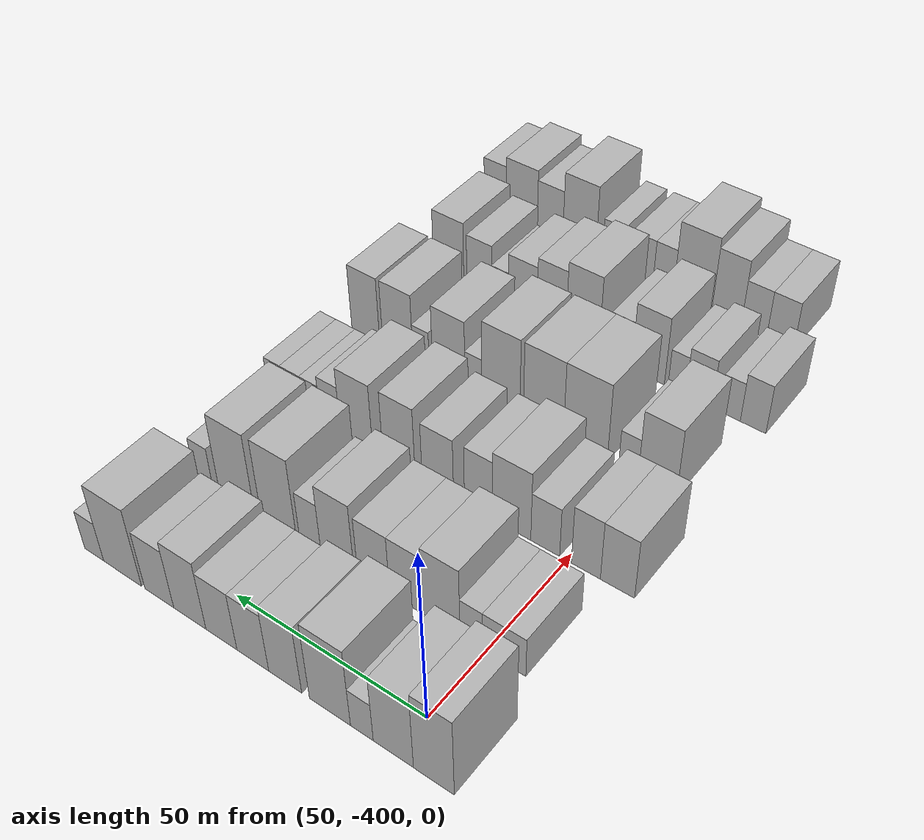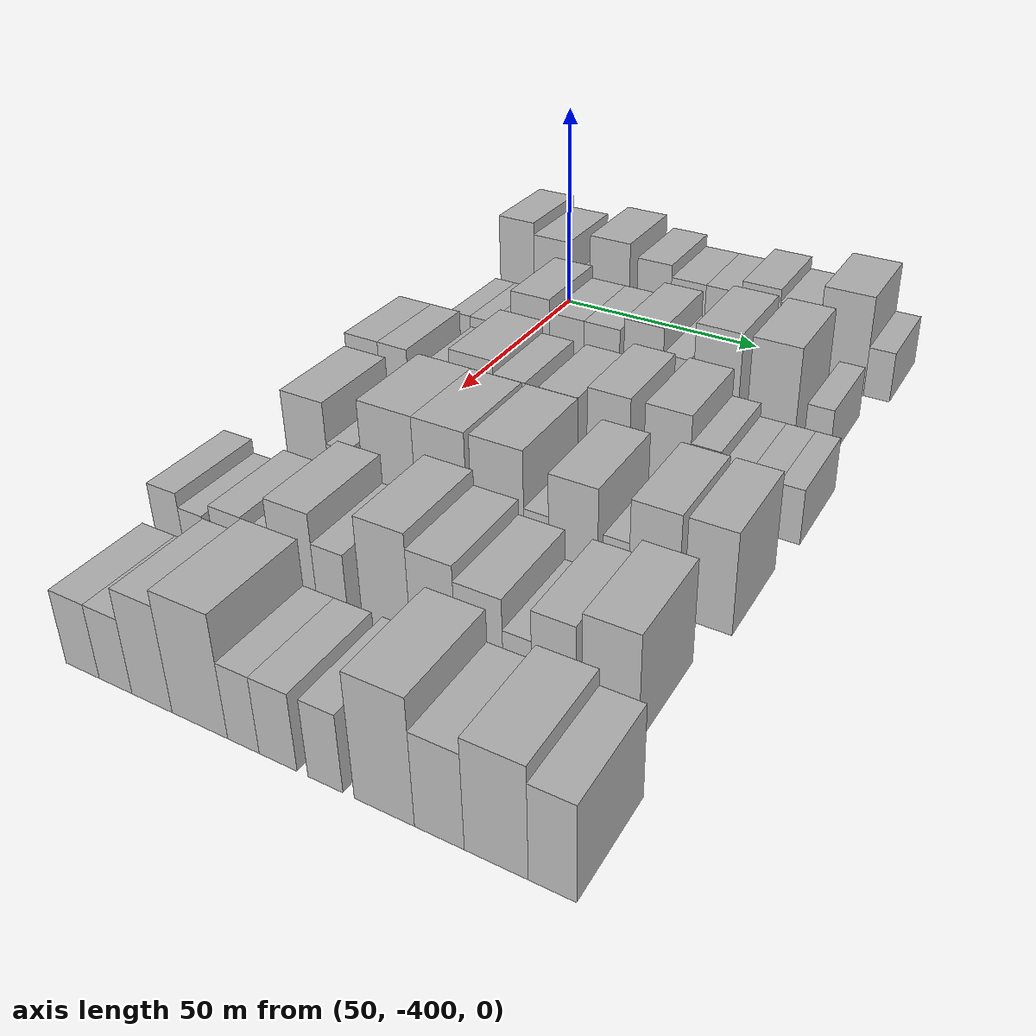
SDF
<sdf version="1.6">
 <world name="default">
  <model name="building_11">
   <static>1</static>
   <pose>50.0000 -409.3301 0 0.000000 0.000000 0.000000</pose>
   <link name="link">
    <pose>0 0 12.00 0 0 0</pose>
    <collision name="collision"><geometry><box><size>20.0000 9.6047 24.0000</size></box></geometry></collision>
    <visual name="visual">
     <cast_shadows>0</cast_shadows>
     <geometry><box><size>20.0000 9.6047 24.0000</size></box></geometry>
     <material>
      <script>
       <uri>model://HANNAS_wall/materials/scripts</uri>
       <uri>model://HANNAS_wall/materials/textures</uri>
       <name>vrc/HANNAS_wall</name>
      </script>
     </material>
    </visual>
   </link>
  </model>
  <model name="building_12">
   <static>1</static>
   <pose>50.0000 -399.6689 0 0.000000 0.000000 0.000000</pose>
   <link name="link">
    <pose>0 0 10.50 0 0 0</pose>
    <collision name="collision"><geometry><box><size>20.0000 9.7177 21.0000</size></box></geometry></collision>
    <visual name="visual">
     <cast_shadows>0</cast_shadows>
     <geometry><box><size>20.0000 9.7177 21.0000</size></box></geometry>
     <material>
      <script>
       <uri>model://HANNAS_wall/materials/scripts</uri>
       <uri>model://HANNAS_wall/materials/textures</uri>
       <name>vrc/HANNAS_wall</name>
      </script>
     </material>
    </visual>
   </link>
  </model>
  <model name="building_13">
   <static>1</static>
   <pose>50.0000 -391.9871 0 0.000000 0.000000 0.000000</pose>
   <link name="link">
    <pose>0 0 6.00 0 0 0</pose>
    <collision name="collision"><geometry><box><size>20.0000 5.6458 12.0000</size></box></geometry></collision>
    <visual name="visual">
     <cast_shadows>0</cast_shadows>
     <geometry><box><size>20.0000 5.6458 12.0000</size></box></geometry>
     <material>
      <script>
       <uri>model://HANNAS_wall/materials/scripts</uri>
       <uri>model://HANNAS_wall/materials/textures</uri>
       <name>vrc/HANNAS_wall</name>
      </script>
     </material>
    </visual>
   </link>
  </model>
  <model name="building_14">
   <static>1</static>
   <pose>50.0000 -383.9523 0 0.000000 0.000000 0.000000</pose>
   <link name="link">
    <pose>0 0 12.00 0 0 0</pose>
    <collision name="collision"><geometry><box><size>20.0000 10.4239 24.0000</size></box></geometry></collision>
    <visual name="visual">
     <cast_shadows>0</cast_shadows>
     <geometry><box><size>20.0000 10.4239 24.0000</size></box></geometry>
     <material>
      <script>
       <uri>model://HANNAS_wall/materials/scripts</uri>
       <uri>model://HANNAS_wall/materials/textures</uri>
       <name>vrc/HANNAS_wall</name>
      </script>
     </material>
    </visual>
   </link>
  </model>
  <model name="building_15">
   <static>1</static>
   <pose>50.0000 -372.4030 0 0.000000 0.000000 0.000000</pose>
   <link name="link">
    <pose>0 0 10.50 0 0 0</pose>
    <collision name="collision"><geometry><box><size>20.0000 8.6746 21.0000</size></box></geometry></collision>
    <visual name="visual">
     <cast_shadows>0</cast_shadows>
     <geometry><box><size>20.0000 8.6746 21.0000</size></box></geometry>
     <material>
      <script>
       <uri>model://HANNAS_wall/materials/scripts</uri>
       <uri>model://HANNAS_wall/materials/textures</uri>
       <name>vrc/HANNAS_wall</name>
      </script>
     </material>
    </visual>
   </link>
  </model>
  <model name="building_16">
   <static>1</static>
   <pose>50.0000 -363.7755 0 0.000000 0.000000 0.000000</pose>
   <link name="link">
    <pose>0 0 9.00 0 0 0</pose>
    <collision name="collision"><geometry><box><size>20.0000 8.5804 18.0000</size></box></geometry></collision>
    <visual name="visual">
     <cast_shadows>0</cast_shadows>
     <geometry><box><size>20.0000 8.5804 18.0000</size></box></geometry>
     <material>
      <script>
       <uri>model://HANNAS_wall/materials/scripts</uri>
       <uri>model://HANNAS_wall/materials/textures</uri>
       <name>vrc/HANNAS_wall</name>
      </script>
     </material>
    </visual>
   </link>
  </model>
  <model name="building_17">
   <static>1</static>
   <pose>50.0000 -355.1948 0 0.000000 0.000000 0.000000</pose>
   <link name="link">
    <pose>0 0 9.00 0 0 0</pose>
    <collision name="collision"><geometry><box><size>20.0000 8.5810 18.0000</size></box></geometry></collision>
    <visual name="visual">
     <cast_shadows>0</cast_shadows>
     <geometry><box><size>20.0000 8.5810 18.0000</size></box></geometry>
     <material>
      <script>
       <uri>model://HANNAS_wall/materials/scripts</uri>
       <uri>model://HANNAS_wall/materials/textures</uri>
       <name>vrc/HANNAS_wall</name>
      </script>
     </material>
    </visual>
   </link>
  </model>
  <model name="building_18">
   <static>1</static>
   <pose>50.0000 -346.3274 0 0.000000 0.000000 0.000000</pose>
   <link name="link">
    <pose>0 0 10.50 0 0 0</pose>
    <collision name="collision"><geometry><box><size>20.0000 9.1539 21.0000</size></box></geometry></collision>
    <visual name="visual">
     <cast_shadows>0</cast_shadows>
     <geometry><box><size>20.0000 9.1539 21.0000</size></box></geometry>
     <material>
      <script>
       <uri>model://HANNAS_wall/materials/scripts</uri>
       <uri>model://HANNAS_wall/materials/textures</uri>
       <name>vrc/HANNAS_wall</name>
      </script>
     </material>
    </visual>
   </link>
  </model>
  <model name="building_19">
   <static>1</static>
   <pose>50.0000 -337.5470 0 0.000000 0.000000 0.000000</pose>
   <link name="link">
    <pose>0 0 9.00 0 0 0</pose>
    <collision name="collision"><geometry><box><size>20.0000 8.4068 18.0000</size></box></geometry></collision>
    <visual name="visual">
     <cast_shadows>0</cast_shadows>
     <geometry><box><size>20.0000 8.4068 18.0000</size></box></geometry>
     <material>
      <script>
       <uri>model://HANNAS_wall/materials/scripts</uri>
       <uri>model://HANNAS_wall/materials/textures</uri>
       <name>vrc/HANNAS_wall</name>
      </script>
     </material>
    </visual>
   </link>
  </model>
  <model name="building_20">
   <static>1</static>
   <pose>50.0000 -326.6744 0 0.000000 0.000000 0.000000</pose>
   <link name="link">
    <pose>0 0 12.00 0 0 0</pose>
    <collision name="collision"><geometry><box><size>20.0000 11.3383 24.0000</size></box></geometry></collision>
    <visual name="visual">
     <cast_shadows>0</cast_shadows>
     <geometry><box><size>20.0000 11.3383 24.0000</size></box></geometry>
     <material>
      <script>
       <uri>model://HANNAS_wall/materials/scripts</uri>
       <uri>model://HANNAS_wall/materials/textures</uri>
       <name>vrc/HANNAS_wall</name>
      </script>
     </material>
    </visual>
   </link>
  </model>
  <model name="building_21">
   <static>1</static>
   <pose>50.0000 -318.1015 0 0.000000 0.000000 0.000000</pose>
   <link name="link">
    <pose>0 0 6.00 0 0 0</pose>
    <collision name="collision"><geometry><box><size>20.0000 5.8074 12.0000</size></box></geometry></collision>
    <visual name="visual">
     <cast_shadows>0</cast_shadows>
     <geometry><box><size>20.0000 5.8074 12.0000</size></box></geometry>
     <material>
      <script>
       <uri>model://HANNAS_wall/materials/scripts</uri>
       <uri>model://HANNAS_wall/materials/textures</uri>
       <name>vrc/HANNAS_wall</name>
      </script>
     </material>
    </visual>
   </link>
  </model>
  <model name="building_123">
   <static>1</static>
   <pose>79.0000 -407.1896 0 0.000000 0.000000 0.000000</pose>
   <link name="link">
    <pose>0 0 6.00 0 0 0</pose>
    <collision name="collision"><geometry><box><size>20.0000 5.3281 12.0000</size></box></geometry></collision>
    <visual name="visual">
     <cast_shadows>0</cast_shadows>
     <geometry><box><size>20.0000 5.3281 12.0000</size></box></geometry>
     <material>
      <script>
       <uri>model://HANNAS_wall/materials/scripts</uri>
       <uri>model://HANNAS_wall/materials/textures</uri>
       <name>vrc/HANNAS_wall</name>
      </script>
     </material>
    </visual>
   </link>
  </model>
  <model name="building_124">
   <static>1</static>
   <pose>79.0000 -401.8822 0 0.000000 0.000000 0.000000</pose>
   <link name="link">
    <pose>0 0 6.00 0 0 0</pose>
    <collision name="collision"><geometry><box><size>20.0000 5.2866 12.0000</size></box></geometry></collision>
    <visual name="visual">
     <cast_shadows>0</cast_shadows>
     <geometry><box><size>20.0000 5.2866 12.0000</size></box></geometry>
     <material>
      <script>
       <uri>model://HANNAS_wall/materials/scripts</uri>
       <uri>model://HANNAS_wall/materials/textures</uri>
       <name>vrc/HANNAS_wall</name>
      </script>
     </material>
    </visual>
   </link>
  </model>
  <model name="building_125">
   <static>1</static>
   <pose>79.0000 -396.4181 0 0.000000 0.000000 0.000000</pose>
   <link name="link">
    <pose>0 0 6.00 0 0 0</pose>
    <collision name="collision"><geometry><box><size>20.0000 5.6417 12.0000</size></box></geometry></collision>
    <visual name="visual">
     <cast_shadows>0</cast_shadows>
     <geometry><box><size>20.0000 5.6417 12.0000</size></box></geometry>
     <material>
      <script>
       <uri>model://HANNAS_wall/materials/scripts</uri>
       <uri>model://HANNAS_wall/materials/textures</uri>
       <name>vrc/HANNAS_wall</name>
      </script>
     </material>
    </visual>
   </link>
  </model>
  <model name="building_126">
   <static>1</static>
   <pose>79.0000 -388.7456 0 0.000000 0.000000 0.000000</pose>
   <link name="link">
    <pose>0 0 10.50 0 0 0</pose>
    <collision name="collision"><geometry><box><size>20.0000 9.7032 21.0000</size></box></geometry></collision>
    <visual name="visual">
     <cast_shadows>0</cast_shadows>
     <geometry><box><size>20.0000 9.7032 21.0000</size></box></geometry>
     <material>
      <script>
       <uri>model://HANNAS_wall/materials/scripts</uri>
       <uri>model://HANNAS_wall/materials/textures</uri>
       <name>vrc/HANNAS_wall</name>
      </script>
     </material>
    </visual>
   </link>
  </model>
  <model name="building_127">
   <static>1</static>
   <pose>79.0000 -379.6104 0 0.000000 0.000000 0.000000</pose>
   <link name="link">
    <pose>0 0 9.00 0 0 0</pose>
    <collision name="collision"><geometry><box><size>20.0000 8.5672 18.0000</size></box></geometry></collision>
    <visual name="visual">
     <cast_shadows>0</cast_shadows>
     <geometry><box><size>20.0000 8.5672 18.0000</size></box></geometry>
     <material>
      <script>
       <uri>model://HANNAS_wall/materials/scripts</uri>
       <uri>model://HANNAS_wall/materials/textures</uri>
       <name>vrc/HANNAS_wall</name>
      </script>
     </material>
    </visual>
   </link>
  </model>
  <model name="building_128">
   <static>1</static>
   <pose>79.0000 -371.0277 0 0.000000 0.000000 0.000000</pose>
   <link name="link">
    <pose>0 0 9.00 0 0 0</pose>
    <collision name="collision"><geometry><box><size>20.0000 8.5981 18.0000</size></box></geometry></collision>
    <visual name="visual">
     <cast_shadows>0</cast_shadows>
     <geometry><box><size>20.0000 8.5981 18.0000</size></box></geometry>
     <material>
      <script>
       <uri>model://HANNAS_wall/materials/scripts</uri>
       <uri>model://HANNAS_wall/materials/textures</uri>
       <name>vrc/HANNAS_wall</name>
      </script>
     </material>
    </visual>
   </link>
  </model>
  <model name="building_129">
   <static>1</static>
   <pose>79.0000 -361.1349 0 0.000000 0.000000 0.000000</pose>
   <link name="link">
    <pose>0 0 10.50 0 0 0</pose>
    <collision name="collision"><geometry><box><size>20.0000 9.1876 21.0000</size></box></geometry></collision>
    <visual name="visual">
     <cast_shadows>0</cast_shadows>
     <geometry><box><size>20.0000 9.1876 21.0000</size></box></geometry>
     <material>
      <script>
       <uri>model://HANNAS_wall/materials/scripts</uri>
       <uri>model://HANNAS_wall/materials/textures</uri>
       <name>vrc/HANNAS_wall</name>
      </script>
     </material>
    </visual>
   </link>
  </model>
  <model name="building_130">
   <static>1</static>
   <pose>79.0000 -353.5387 0 0.000000 0.000000 0.000000</pose>
   <link name="link">
    <pose>0 0 7.50 0 0 0</pose>
    <collision name="collision"><geometry><box><size>20.0000 6.0046 15.0000</size></box></geometry></collision>
    <visual name="visual">
     <cast_shadows>0</cast_shadows>
     <geometry><box><size>20.0000 6.0046 15.0000</size></box></geometry>
     <material>
      <script>
       <uri>model://HANNAS_wall/materials/scripts</uri>
       <uri>model://HANNAS_wall/materials/textures</uri>
       <name>vrc/HANNAS_wall</name>
      </script>
     </material>
    </visual>
   </link>
  </model>
  <model name="building_131">
   <static>1</static>
   <pose>79.0000 -344.4039 0 0.000000 0.000000 0.000000</pose>
   <link name="link">
    <pose>0 0 12.00 0 0 0</pose>
    <collision name="collision"><geometry><box><size>20.0000 10.2651 24.0000</size></box></geometry></collision>
    <visual name="visual">
     <cast_shadows>0</cast_shadows>
     <geometry><box><size>20.0000 10.2651 24.0000</size></box></geometry>
     <material>
      <script>
       <uri>model://HANNAS_wall/materials/scripts</uri>
       <uri>model://HANNAS_wall/materials/textures</uri>
       <name>vrc/HANNAS_wall</name>
      </script>
     </material>
    </visual>
   </link>
  </model>
  <model name="building_132">
   <static>1</static>
   <pose>79.0000 -332.0122 0 0.000000 0.000000 0.000000</pose>
   <link name="link">
    <pose>0 0 12.00 0 0 0</pose>
    <collision name="collision"><geometry><box><size>20.0000 10.5182 24.0000</size></box></geometry></collision>
    <visual name="visual">
     <cast_shadows>0</cast_shadows>
     <geometry><box><size>20.0000 10.5182 24.0000</size></box></geometry>
     <material>
      <script>
       <uri>model://HANNAS_wall/materials/scripts</uri>
       <uri>model://HANNAS_wall/materials/textures</uri>
       <name>vrc/HANNAS_wall</name>
      </script>
     </material>
    </visual>
   </link>
  </model>
  <model name="building_133">
   <static>1</static>
   <pose>79.0000 -321.9564 0 0.000000 0.000000 0.000000</pose>
   <link name="link">
    <pose>0 0 6.00 0 0 0</pose>
    <collision name="collision"><geometry><box><size>20.0000 5.5934 12.0000</size></box></geometry></collision>
    <visual name="visual">
     <cast_shadows>0</cast_shadows>
     <geometry><box><size>20.0000 5.5934 12.0000</size></box></geometry>
     <material>
      <script>
       <uri>model://HANNAS_wall/materials/scripts</uri>
       <uri>model://HANNAS_wall/materials/textures</uri>
       <name>vrc/HANNAS_wall</name>
      </script>
     </material>
    </visual>
   </link>
  </model>
  <model name="building_231">
   <static>1</static>
   <pose>108.0000 -412.7383 0 0.000000 0.000000 0.000000</pose>
   <link name="link">
    <pose>0 0 9.00 0 0 0</pose>
    <collision name="collision"><geometry><box><size>20.0000 8.4314 18.0000</size></box></geometry></collision>
    <visual name="visual">
     <cast_shadows>0</cast_shadows>
     <geometry><box><size>20.0000 8.4314 18.0000</size></box></geometry>
     <material>
      <script>
       <uri>model://HANNAS_wall/materials/scripts</uri>
       <uri>model://HANNAS_wall/materials/textures</uri>
       <name>vrc/HANNAS_wall</name>
      </script>
     </material>
    </visual>
   </link>
  </model>
  <model name="building_232">
   <static>1</static>
   <pose>108.0000 -404.8731 0 0.000000 0.000000 0.000000</pose>
   <link name="link">
    <pose>0 0 9.00 0 0 0</pose>
    <collision name="collision"><geometry><box><size>20.0000 7.2991 18.0000</size></box></geometry></collision>
    <visual name="visual">
     <cast_shadows>0</cast_shadows>
     <geometry><box><size>20.0000 7.2991 18.0000</size></box></geometry>
     <material>
      <script>
       <uri>model://HANNAS_wall/materials/scripts</uri>
       <uri>model://HANNAS_wall/materials/textures</uri>
       <name>vrc/HANNAS_wall</name>
      </script>
     </material>
    </visual>
   </link>
  </model>
  <model name="building_233">
   <static>1</static>
   <pose>108.0000 -394.4819 0 0.000000 0.000000 0.000000</pose>
   <link name="link">
    <pose>0 0 7.50 0 0 0</pose>
    <collision name="collision"><geometry><box><size>20.0000 7.4832 15.0000</size></box></geometry></collision>
    <visual name="visual">
     <cast_shadows>0</cast_shadows>
     <geometry><box><size>20.0000 7.4832 15.0000</size></box></geometry>
     <material>
      <script>
       <uri>model://HANNAS_wall/materials/scripts</uri>
       <uri>model://HANNAS_wall/materials/textures</uri>
       <name>vrc/HANNAS_wall</name>
      </script>
     </material>
    </visual>
   </link>
  </model>
  <model name="building_234">
   <static>1</static>
   <pose>108.0000 -385.6090 0 0.000000 0.000000 0.000000</pose>
   <link name="link">
    <pose>0 0 10.50 0 0 0</pose>
    <collision name="collision"><geometry><box><size>20.0000 10.2627 21.0000</size></box></geometry></collision>
    <visual name="visual">
     <cast_shadows>0</cast_shadows>
     <geometry><box><size>20.0000 10.2627 21.0000</size></box></geometry>
     <material>
      <script>
       <uri>model://HANNAS_wall/materials/scripts</uri>
       <uri>model://HANNAS_wall/materials/textures</uri>
       <name>vrc/HANNAS_wall</name>
      </script>
     </material>
    </visual>
   </link>
  </model>
  <model name="building_235">
   <static>1</static>
   <pose>108.0000 -376.7361 0 0.000000 0.000000 0.000000</pose>
   <link name="link">
    <pose>0 0 9.00 0 0 0</pose>
    <collision name="collision"><geometry><box><size>20.0000 7.4829 18.0000</size></box></geometry></collision>
    <visual name="visual">
     <cast_shadows>0</cast_shadows>
     <geometry><box><size>20.0000 7.4829 18.0000</size></box></geometry>
     <material>
      <script>
       <uri>model://HANNAS_wall/materials/scripts</uri>
       <uri>model://HANNAS_wall/materials/textures</uri>
       <name>vrc/HANNAS_wall</name>
      </script>
     </material>
    </visual>
   </link>
  </model>
  <model name="building_236">
   <static>1</static>
   <pose>108.0000 -365.5956 0 0.000000 0.000000 0.000000</pose>
   <link name="link">
    <pose>0 0 9.00 0 0 0</pose>
    <collision name="collision"><geometry><box><size>20.0000 8.7981 18.0000</size></box></geometry></collision>
    <visual name="visual">
     <cast_shadows>0</cast_shadows>
     <geometry><box><size>20.0000 8.7981 18.0000</size></box></geometry>
     <material>
      <script>
       <uri>model://HANNAS_wall/materials/scripts</uri>
       <uri>model://HANNAS_wall/materials/textures</uri>
       <name>vrc/HANNAS_wall</name>
      </script>
     </material>
    </visual>
   </link>
  </model>
  <model name="building_237">
   <static>1</static>
   <pose>108.0000 -354.5774 0 0.000000 0.000000 0.000000</pose>
   <link name="link">
    <pose>0 0 10.50 0 0 0</pose>
    <collision name="collision"><geometry><box><size>20.0000 9.2383 21.0000</size></box></geometry></collision>
    <visual name="visual">
     <cast_shadows>0</cast_shadows>
     <geometry><box><size>20.0000 9.2383 21.0000</size></box></geometry>
     <material>
      <script>
       <uri>model://HANNAS_wall/materials/scripts</uri>
       <uri>model://HANNAS_wall/materials/textures</uri>
       <name>vrc/HANNAS_wall</name>
      </script>
     </material>
    </visual>
   </link>
  </model>
  <model name="building_238">
   <static>1</static>
   <pose>108.0000 -342.1829 0 0.000000 0.000000 0.000000</pose>
   <link name="link">
    <pose>0 0 10.50 0 0 0</pose>
    <collision name="collision"><geometry><box><size>20.0000 9.5505 21.0000</size></box></geometry></collision>
    <visual name="visual">
     <cast_shadows>0</cast_shadows>
     <geometry><box><size>20.0000 9.5505 21.0000</size></box></geometry>
     <material>
      <script>
       <uri>model://HANNAS_wall/materials/scripts</uri>
       <uri>model://HANNAS_wall/materials/textures</uri>
       <name>vrc/HANNAS_wall</name>
      </script>
     </material>
    </visual>
   </link>
  </model>
  <model name="building_239">
   <static>1</static>
   <pose>108.0000 -334.3765 0 0.000000 0.000000 0.000000</pose>
   <link name="link">
    <pose>0 0 7.50 0 0 0</pose>
    <collision name="collision"><geometry><box><size>20.0000 6.0624 15.0000</size></box></geometry></collision>
    <visual name="visual">
     <cast_shadows>0</cast_shadows>
     <geometry><box><size>20.0000 6.0624 15.0000</size></box></geometry>
     <material>
      <script>
       <uri>model://HANNAS_wall/materials/scripts</uri>
       <uri>model://HANNAS_wall/materials/textures</uri>
       <name>vrc/HANNAS_wall</name>
      </script>
     </material>
    </visual>
   </link>
  </model>
  <model name="building_240">
   <static>1</static>
   <pose>108.0000 -328.6242 0 0.000000 0.000000 0.000000</pose>
   <link name="link">
    <pose>0 0 6.00 0 0 0</pose>
    <collision name="collision"><geometry><box><size>20.0000 5.4421 12.0000</size></box></geometry></collision>
    <visual name="visual">
     <cast_shadows>0</cast_shadows>
     <geometry><box><size>20.0000 5.4421 12.0000</size></box></geometry>
     <material>
      <script>
       <uri>model://HANNAS_wall/materials/scripts</uri>
       <uri>model://HANNAS_wall/materials/textures</uri>
       <name>vrc/HANNAS_wall</name>
      </script>
     </material>
    </visual>
   </link>
  </model>
  <model name="building_241">
   <static>1</static>
   <pose>108.0000 -322.9316 0 0.000000 0.000000 0.000000</pose>
   <link name="link">
    <pose>0 0 6.00 0 0 0</pose>
    <collision name="collision"><geometry><box><size>20.0000 5.9430 12.0000</size></box></geometry></collision>
    <visual name="visual">
     <cast_shadows>0</cast_shadows>
     <geometry><box><size>20.0000 5.9430 12.0000</size></box></geometry>
     <material>
      <script>
       <uri>model://HANNAS_wall/materials/scripts</uri>
       <uri>model://HANNAS_wall/materials/textures</uri>
       <name>vrc/HANNAS_wall</name>
      </script>
     </material>
    </visual>
   </link>
  </model>
  <model name="building_242">
   <static>1</static>
   <pose>108.0000 -317.4744 0 0.000000 0.000000 0.000000</pose>
   <link name="link">
    <pose>0 0 6.00 0 0 0</pose>
    <collision name="collision"><geometry><box><size>20.0000 4.9715 12.0000</size></box></geometry></collision>
    <visual name="visual">
     <cast_shadows>0</cast_shadows>
     <geometry><box><size>20.0000 4.9715 12.0000</size></box></geometry>
     <material>
      <script>
       <uri>model://HANNAS_wall/materials/scripts</uri>
       <uri>model://HANNAS_wall/materials/textures</uri>
       <name>vrc/HANNAS_wall</name>
      </script>
     </material>
    </visual>
   </link>
  </model>
  <model name="building_340">
   <static>1</static>
   <pose>137.0000 -404.6778 0 0.000000 0.000000 0.000000</pose>
   <link name="link">
    <pose>0 0 10.50 0 0 0</pose>
    <collision name="collision"><geometry><box><size>20.0000 9.9357 21.0000</size></box></geometry></collision>
    <visual name="visual">
     <cast_shadows>0</cast_shadows>
     <geometry><box><size>20.0000 9.9357 21.0000</size></box></geometry>
     <material>
      <script>
       <uri>model://HANNAS_wall/materials/scripts</uri>
       <uri>model://HANNAS_wall/materials/textures</uri>
       <name>vrc/HANNAS_wall</name>
      </script>
     </material>
    </visual>
   </link>
  </model>
  <model name="building_341">
   <static>1</static>
   <pose>137.0000 -397.1200 0 0.000000 0.000000 0.000000</pose>
   <link name="link">
    <pose>0 0 6.00 0 0 0</pose>
    <collision name="collision"><geometry><box><size>20.0000 5.1799 12.0000</size></box></geometry></collision>
    <visual name="visual">
     <cast_shadows>0</cast_shadows>
     <geometry><box><size>20.0000 5.1799 12.0000</size></box></geometry>
     <material>
      <script>
       <uri>model://HANNAS_wall/materials/scripts</uri>
       <uri>model://HANNAS_wall/materials/textures</uri>
       <name>vrc/HANNAS_wall</name>
      </script>
     </material>
    </visual>
   </link>
  </model>
  <model name="building_342">
   <static>1</static>
   <pose>137.0000 -385.5321 0 0.000000 0.000000 0.000000</pose>
   <link name="link">
    <pose>0 0 12.00 0 0 0</pose>
    <collision name="collision"><geometry><box><size>20.0000 11.9959 24.0000</size></box></geometry></collision>
    <visual name="visual">
     <cast_shadows>0</cast_shadows>
     <geometry><box><size>20.0000 11.9959 24.0000</size></box></geometry>
     <material>
      <script>
       <uri>model://HANNAS_wall/materials/scripts</uri>
       <uri>model://HANNAS_wall/materials/textures</uri>
       <name>vrc/HANNAS_wall</name>
      </script>
     </material>
    </visual>
   </link>
  </model>
  <model name="building_343">
   <static>1</static>
   <pose>137.0000 -373.9219 0 0.000000 0.000000 0.000000</pose>
   <link name="link">
    <pose>0 0 12.00 0 0 0</pose>
    <collision name="collision"><geometry><box><size>20.0000 11.2246 24.0000</size></box></geometry></collision>
    <visual name="visual">
     <cast_shadows>0</cast_shadows>
     <geometry><box><size>20.0000 11.2246 24.0000</size></box></geometry>
     <material>
      <script>
       <uri>model://HANNAS_wall/materials/scripts</uri>
       <uri>model://HANNAS_wall/materials/textures</uri>
       <name>vrc/HANNAS_wall</name>
      </script>
     </material>
    </visual>
   </link>
  </model>
  <model name="building_344">
   <static>1</static>
   <pose>137.0000 -361.8394 0 0.000000 0.000000 0.000000</pose>
   <link name="link">
    <pose>0 0 12.00 0 0 0</pose>
    <collision name="collision"><geometry><box><size>20.0000 10.9402 24.0000</size></box></geometry></collision>
    <visual name="visual">
     <cast_shadows>0</cast_shadows>
     <geometry><box><size>20.0000 10.9402 24.0000</size></box></geometry>
     <material>
      <script>
       <uri>model://HANNAS_wall/materials/scripts</uri>
       <uri>model://HANNAS_wall/materials/textures</uri>
       <name>vrc/HANNAS_wall</name>
      </script>
     </material>
    </visual>
   </link>
  </model>
  <model name="building_345">
   <static>1</static>
   <pose>137.0000 -353.8838 0 0.000000 0.000000 0.000000</pose>
   <link name="link">
    <pose>0 0 6.00 0 0 0</pose>
    <collision name="collision"><geometry><box><size>20.0000 4.9710 12.0000</size></box></geometry></collision>
    <visual name="visual">
     <cast_shadows>0</cast_shadows>
     <geometry><box><size>20.0000 4.9710 12.0000</size></box></geometry>
     <material>
      <script>
       <uri>model://HANNAS_wall/materials/scripts</uri>
       <uri>model://HANNAS_wall/materials/textures</uri>
       <name>vrc/HANNAS_wall</name>
      </script>
     </material>
    </visual>
   </link>
  </model>
  <model name="building_346">
   <static>1</static>
   <pose>137.0000 -346.5379 0 0.000000 0.000000 0.000000</pose>
   <link name="link">
    <pose>0 0 10.50 0 0 0</pose>
    <collision name="collision"><geometry><box><size>20.0000 9.7209 21.0000</size></box></geometry></collision>
    <visual name="visual">
     <cast_shadows>0</cast_shadows>
     <geometry><box><size>20.0000 9.7209 21.0000</size></box></geometry>
     <material>
      <script>
       <uri>model://HANNAS_wall/materials/scripts</uri>
       <uri>model://HANNAS_wall/materials/textures</uri>
       <name>vrc/HANNAS_wall</name>
      </script>
     </material>
    </visual>
   </link>
  </model>
  <model name="building_347">
   <static>1</static>
   <pose>137.0000 -338.1672 0 0.000000 0.000000 0.000000</pose>
   <link name="link">
    <pose>0 0 6.00 0 0 0</pose>
    <collision name="collision"><geometry><box><size>20.0000 5.0205 12.0000</size></box></geometry></collision>
    <visual name="visual">
     <cast_shadows>0</cast_shadows>
     <geometry><box><size>20.0000 5.0205 12.0000</size></box></geometry>
     <material>
      <script>
       <uri>model://HANNAS_wall/materials/scripts</uri>
       <uri>model://HANNAS_wall/materials/textures</uri>
       <name>vrc/HANNAS_wall</name>
      </script>
     </material>
    </visual>
   </link>
  </model>
  <model name="building_348">
   <static>1</static>
   <pose>137.0000 -330.9777 0 0.000000 0.000000 0.000000</pose>
   <link name="link">
    <pose>0 0 10.50 0 0 0</pose>
    <collision name="collision"><geometry><box><size>20.0000 9.3585 21.0000</size></box></geometry></collision>
    <visual name="visual">
     <cast_shadows>0</cast_shadows>
     <geometry><box><size>20.0000 9.3585 21.0000</size></box></geometry>
     <material>
      <script>
       <uri>model://HANNAS_wall/materials/scripts</uri>
       <uri>model://HANNAS_wall/materials/textures</uri>
       <name>vrc/HANNAS_wall</name>
      </script>
     </material>
    </visual>
   </link>
  </model>
  <model name="building_349">
   <static>1</static>
   <pose>137.0000 -320.8616 0 0.000000 0.000000 0.000000</pose>
   <link name="link">
    <pose>0 0 10.50 0 0 0</pose>
    <collision name="collision"><geometry><box><size>20.0000 8.8736 21.0000</size></box></geometry></collision>
    <visual name="visual">
     <cast_shadows>0</cast_shadows>
     <geometry><box><size>20.0000 8.8736 21.0000</size></box></geometry>
     <material>
      <script>
       <uri>model://HANNAS_wall/materials/scripts</uri>
       <uri>model://HANNAS_wall/materials/textures</uri>
       <name>vrc/HANNAS_wall</name>
      </script>
     </material>
    </visual>
   </link>
  </model>
  <model name="building_456">
   <static>1</static>
   <pose>166.0000 -412.9230 0 0.000000 0.000000 0.000000</pose>
   <link name="link">
    <pose>0 0 7.50 0 0 0</pose>
    <collision name="collision"><geometry><box><size>20.0000 6.6929 15.0000</size></box></geometry></collision>
    <visual name="visual">
     <cast_shadows>0</cast_shadows>
     <geometry><box><size>20.0000 6.6929 15.0000</size></box></geometry>
     <material>
      <script>
       <uri>model://HANNAS_wall/materials/scripts</uri>
       <uri>model://HANNAS_wall/materials/textures</uri>
       <name>vrc/HANNAS_wall</name>
      </script>
     </material>
    </visual>
   </link>
  </model>
  <model name="building_457">
   <static>1</static>
   <pose>166.0000 -406.8262 0 0.000000 0.000000 0.000000</pose>
   <link name="link">
    <pose>0 0 6.00 0 0 0</pose>
    <collision name="collision"><geometry><box><size>20.0000 5.5007 12.0000</size></box></geometry></collision>
    <visual name="visual">
     <cast_shadows>0</cast_shadows>
     <geometry><box><size>20.0000 5.5007 12.0000</size></box></geometry>
     <material>
      <script>
       <uri>model://HANNAS_wall/materials/scripts</uri>
       <uri>model://HANNAS_wall/materials/textures</uri>
       <name>vrc/HANNAS_wall</name>
      </script>
     </material>
    </visual>
   </link>
  </model>
  <model name="building_458">
   <static>1</static>
   <pose>166.0000 -398.4928 0 0.000000 0.000000 0.000000</pose>
   <link name="link">
    <pose>0 0 7.50 0 0 0</pose>
    <collision name="collision"><geometry><box><size>20.0000 7.1661 15.0000</size></box></geometry></collision>
    <visual name="visual">
     <cast_shadows>0</cast_shadows>
     <geometry><box><size>20.0000 7.1661 15.0000</size></box></geometry>
     <material>
      <script>
       <uri>model://HANNAS_wall/materials/scripts</uri>
       <uri>model://HANNAS_wall/materials/textures</uri>
       <name>vrc/HANNAS_wall</name>
      </script>
     </material>
    </visual>
   </link>
  </model>
  <model name="building_459">
   <static>1</static>
   <pose>166.0000 -392.4609 0 0.000000 0.000000 0.000000</pose>
   <link name="link">
    <pose>0 0 6.00 0 0 0</pose>
    <collision name="collision"><geometry><box><size>20.0000 4.8978 12.0000</size></box></geometry></collision>
    <visual name="visual">
     <cast_shadows>0</cast_shadows>
     <geometry><box><size>20.0000 4.8978 12.0000</size></box></geometry>
     <material>
      <script>
       <uri>model://HANNAS_wall/materials/scripts</uri>
       <uri>model://HANNAS_wall/materials/textures</uri>
       <name>vrc/HANNAS_wall</name>
      </script>
     </material>
    </visual>
   </link>
  </model>
  <model name="building_460">
   <static>1</static>
   <pose>166.0000 -384.4169 0 0.000000 0.000000 0.000000</pose>
   <link name="link">
    <pose>0 0 10.50 0 0 0</pose>
    <collision name="collision"><geometry><box><size>20.0000 9.1902 21.0000</size></box></geometry></collision>
    <visual name="visual">
     <cast_shadows>0</cast_shadows>
     <geometry><box><size>20.0000 9.1902 21.0000</size></box></geometry>
     <material>
      <script>
       <uri>model://HANNAS_wall/materials/scripts</uri>
       <uri>model://HANNAS_wall/materials/textures</uri>
       <name>vrc/HANNAS_wall</name>
      </script>
     </material>
    </visual>
   </link>
  </model>
  <model name="building_461">
   <static>1</static>
   <pose>166.0000 -376.6007 0 0.000000 0.000000 0.000000</pose>
   <link name="link">
    <pose>0 0 7.50 0 0 0</pose>
    <collision name="collision"><geometry><box><size>20.0000 6.4422 15.0000</size></box></geometry></collision>
    <visual name="visual">
     <cast_shadows>0</cast_shadows>
     <geometry><box><size>20.0000 6.4422 15.0000</size></box></geometry>
     <material>
      <script>
       <uri>model://HANNAS_wall/materials/scripts</uri>
       <uri>model://HANNAS_wall/materials/textures</uri>
       <name>vrc/HANNAS_wall</name>
      </script>
     </material>
    </visual>
   </link>
  </model>
  <model name="building_462">
   <static>1</static>
   <pose>166.0000 -365.5054 0 0.000000 0.000000 0.000000</pose>
   <link name="link">
    <pose>0 0 12.00 0 0 0</pose>
    <collision name="collision"><geometry><box><size>20.0000 9.7484 24.0000</size></box></geometry></collision>
    <visual name="visual">
     <cast_shadows>0</cast_shadows>
     <geometry><box><size>20.0000 9.7484 24.0000</size></box></geometry>
     <material>
      <script>
       <uri>model://HANNAS_wall/materials/scripts</uri>
       <uri>model://HANNAS_wall/materials/textures</uri>
       <name>vrc/HANNAS_wall</name>
      </script>
     </material>
    </visual>
   </link>
  </model>
  <model name="building_463">
   <static>1</static>
   <pose>166.0000 -356.2730 0 0.000000 0.000000 0.000000</pose>
   <link name="link">
    <pose>0 0 10.50 0 0 0</pose>
    <collision name="collision"><geometry><box><size>20.0000 8.7164 21.0000</size></box></geometry></collision>
    <visual name="visual">
     <cast_shadows>0</cast_shadows>
     <geometry><box><size>20.0000 8.7164 21.0000</size></box></geometry>
     <material>
      <script>
       <uri>model://HANNAS_wall/materials/scripts</uri>
       <uri>model://HANNAS_wall/materials/textures</uri>
       <name>vrc/HANNAS_wall</name>
      </script>
     </material>
    </visual>
   </link>
  </model>
  <model name="building_464">
   <static>1</static>
   <pose>166.0000 -347.5236 0 0.000000 0.000000 0.000000</pose>
   <link name="link">
    <pose>0 0 9.00 0 0 0</pose>
    <collision name="collision"><geometry><box><size>20.0000 8.7823 18.0000</size></box></geometry></collision>
    <visual name="visual">
     <cast_shadows>0</cast_shadows>
     <geometry><box><size>20.0000 8.7823 18.0000</size></box></geometry>
     <material>
      <script>
       <uri>model://HANNAS_wall/materials/scripts</uri>
       <uri>model://HANNAS_wall/materials/textures</uri>
       <name>vrc/HANNAS_wall</name>
      </script>
     </material>
    </visual>
   </link>
  </model>
  <model name="building_465">
   <static>1</static>
   <pose>166.0000 -340.5689 0 0.000000 0.000000 0.000000</pose>
   <link name="link">
    <pose>0 0 6.00 0 0 0</pose>
    <collision name="collision"><geometry><box><size>20.0000 5.1272 12.0000</size></box></geometry></collision>
    <visual name="visual">
     <cast_shadows>0</cast_shadows>
     <geometry><box><size>20.0000 5.1272 12.0000</size></box></geometry>
     <material>
      <script>
       <uri>model://HANNAS_wall/materials/scripts</uri>
       <uri>model://HANNAS_wall/materials/textures</uri>
       <name>vrc/HANNAS_wall</name>
      </script>
     </material>
    </visual>
   </link>
  </model>
  <model name="building_466">
   <static>1</static>
   <pose>166.0000 -334.1430 0 0.000000 0.000000 0.000000</pose>
   <link name="link">
    <pose>0 0 9.00 0 0 0</pose>
    <collision name="collision"><geometry><box><size>20.0000 7.7247 18.0000</size></box></geometry></collision>
    <visual name="visual">
     <cast_shadows>0</cast_shadows>
     <geometry><box><size>20.0000 7.7247 18.0000</size></box></geometry>
     <material>
      <script>
       <uri>model://HANNAS_wall/materials/scripts</uri>
       <uri>model://HANNAS_wall/materials/textures</uri>
       <name>vrc/HANNAS_wall</name>
      </script>
     </material>
    </visual>
   </link>
  </model>
  <model name="building_467">
   <static>1</static>
   <pose>166.0000 -324.4193 0 0.000000 0.000000 0.000000</pose>
   <link name="link">
    <pose>0 0 10.50 0 0 0</pose>
    <collision name="collision"><geometry><box><size>20.0000 9.7228 21.0000</size></box></geometry></collision>
    <visual name="visual">
     <cast_shadows>0</cast_shadows>
     <geometry><box><size>20.0000 9.7228 21.0000</size></box></geometry>
     <material>
      <script>
       <uri>model://HANNAS_wall/materials/scripts</uri>
       <uri>model://HANNAS_wall/materials/textures</uri>
       <name>vrc/HANNAS_wall</name>
      </script>
     </material>
    </visual>
   </link>
  </model>
  <model name="building_576">
   <static>1</static>
   <pose>195.0000 -404.4947 0 0.000000 0.000000 0.000000</pose>
   <link name="link">
    <pose>0 0 7.50 0 0 0</pose>
    <collision name="collision"><geometry><box><size>20.0000 7.3996 15.0000</size></box></geometry></collision>
    <visual name="visual">
     <cast_shadows>0</cast_shadows>
     <geometry><box><size>20.0000 7.3996 15.0000</size></box></geometry>
     <material>
      <script>
       <uri>model://HANNAS_wall/materials/scripts</uri>
       <uri>model://HANNAS_wall/materials/textures</uri>
       <name>vrc/HANNAS_wall</name>
      </script>
     </material>
    </visual>
   </link>
  </model>
  <model name="building_577">
   <static>1</static>
   <pose>195.0000 -397.2337 0 0.000000 0.000000 0.000000</pose>
   <link name="link">
    <pose>0 0 7.50 0 0 0</pose>
    <collision name="collision"><geometry><box><size>20.0000 7.1224 15.0000</size></box></geometry></collision>
    <visual name="visual">
     <cast_shadows>0</cast_shadows>
     <geometry><box><size>20.0000 7.1224 15.0000</size></box></geometry>
     <material>
      <script>
       <uri>model://HANNAS_wall/materials/scripts</uri>
       <uri>model://HANNAS_wall/materials/textures</uri>
       <name>vrc/HANNAS_wall</name>
      </script>
     </material>
    </visual>
   </link>
  </model>
  <model name="building_578">
   <static>1</static>
   <pose>195.0000 -389.4425 0 0.000000 0.000000 0.000000</pose>
   <link name="link">
    <pose>0 0 10.50 0 0 0</pose>
    <collision name="collision"><geometry><box><size>20.0000 8.4600 21.0000</size></box></geometry></collision>
    <visual name="visual">
     <cast_shadows>0</cast_shadows>
     <geometry><box><size>20.0000 8.4600 21.0000</size></box></geometry>
     <material>
      <script>
       <uri>model://HANNAS_wall/materials/scripts</uri>
       <uri>model://HANNAS_wall/materials/textures</uri>
       <name>vrc/HANNAS_wall</name>
      </script>
     </material>
    </visual>
   </link>
  </model>
  <model name="building_579">
   <static>1</static>
   <pose>195.0000 -379.6221 0 0.000000 0.000000 0.000000</pose>
   <link name="link">
    <pose>0 0 12.00 0 0 0</pose>
    <collision name="collision"><geometry><box><size>20.0000 11.1807 24.0000</size></box></geometry></collision>
    <visual name="visual">
     <cast_shadows>0</cast_shadows>
     <geometry><box><size>20.0000 11.1807 24.0000</size></box></geometry>
     <material>
      <script>
       <uri>model://HANNAS_wall/materials/scripts</uri>
       <uri>model://HANNAS_wall/materials/textures</uri>
       <name>vrc/HANNAS_wall</name>
      </script>
     </material>
    </visual>
   </link>
  </model>
  <model name="building_580">
   <static>1</static>
   <pose>195.0000 -370.9774 0 0.000000 0.000000 0.000000</pose>
   <link name="link">
    <pose>0 0 7.50 0 0 0</pose>
    <collision name="collision"><geometry><box><size>20.0000 6.1086 15.0000</size></box></geometry></collision>
    <visual name="visual">
     <cast_shadows>0</cast_shadows>
     <geometry><box><size>20.0000 6.1086 15.0000</size></box></geometry>
     <material>
      <script>
       <uri>model://HANNAS_wall/materials/scripts</uri>
       <uri>model://HANNAS_wall/materials/textures</uri>
       <name>vrc/HANNAS_wall</name>
      </script>
     </material>
    </visual>
   </link>
  </model>
  <model name="building_581">
   <static>1</static>
   <pose>195.0000 -364.3590 0 0.000000 0.000000 0.000000</pose>
   <link name="link">
    <pose>0 0 7.50 0 0 0</pose>
    <collision name="collision"><geometry><box><size>20.0000 7.1281 15.0000</size></box></geometry></collision>
    <visual name="visual">
     <cast_shadows>0</cast_shadows>
     <geometry><box><size>20.0000 7.1281 15.0000</size></box></geometry>
     <material>
      <script>
       <uri>model://HANNAS_wall/materials/scripts</uri>
       <uri>model://HANNAS_wall/materials/textures</uri>
       <name>vrc/HANNAS_wall</name>
      </script>
     </material>
    </visual>
   </link>
  </model>
  <model name="building_582">
   <static>1</static>
   <pose>195.0000 -355.6220 0 0.000000 0.000000 0.000000</pose>
   <link name="link">
    <pose>0 0 7.50 0 0 0</pose>
    <collision name="collision"><geometry><box><size>20.0000 6.3459 15.0000</size></box></geometry></collision>
    <visual name="visual">
     <cast_shadows>0</cast_shadows>
     <geometry><box><size>20.0000 6.3459 15.0000</size></box></geometry>
     <material>
      <script>
       <uri>model://HANNAS_wall/materials/scripts</uri>
       <uri>model://HANNAS_wall/materials/textures</uri>
       <name>vrc/HANNAS_wall</name>
      </script>
     </material>
    </visual>
   </link>
  </model>
  <model name="building_583">
   <static>1</static>
   <pose>195.0000 -345.2554 0 0.000000 0.000000 0.000000</pose>
   <link name="link">
    <pose>0 0 12.00 0 0 0</pose>
    <collision name="collision"><geometry><box><size>20.0000 10.3874 24.0000</size></box></geometry></collision>
    <visual name="visual">
     <cast_shadows>0</cast_shadows>
     <geometry><box><size>20.0000 10.3874 24.0000</size></box></geometry>
     <material>
      <script>
       <uri>model://HANNAS_wall/materials/scripts</uri>
       <uri>model://HANNAS_wall/materials/textures</uri>
       <name>vrc/HANNAS_wall</name>
      </script>
     </material>
    </visual>
   </link>
  </model>
  <model name="building_584">
   <static>1</static>
   <pose>195.0000 -335.9507 0 0.000000 0.000000 0.000000</pose>
   <link name="link">
    <pose>0 0 9.00 0 0 0</pose>
    <collision name="collision"><geometry><box><size>20.0000 8.2219 18.0000</size></box></geometry></collision>
    <visual name="visual">
     <cast_shadows>0</cast_shadows>
     <geometry><box><size>20.0000 8.2219 18.0000</size></box></geometry>
     <material>
      <script>
       <uri>model://HANNAS_wall/materials/scripts</uri>
       <uri>model://HANNAS_wall/materials/textures</uri>
       <name>vrc/HANNAS_wall</name>
      </script>
     </material>
    </visual>
   </link>
  </model>
  <model name="building_585">
   <static>1</static>
   <pose>195.0000 -326.7992 0 0.000000 0.000000 0.000000</pose>
   <link name="link">
    <pose>0 0 10.50 0 0 0</pose>
    <collision name="collision"><geometry><box><size>20.0000 10.0811 21.0000</size></box></geometry></collision>
    <visual name="visual">
     <cast_shadows>0</cast_shadows>
     <geometry><box><size>20.0000 10.0811 21.0000</size></box></geometry>
     <material>
      <script>
       <uri>model://HANNAS_wall/materials/scripts</uri>
       <uri>model://HANNAS_wall/materials/textures</uri>
       <name>vrc/HANNAS_wall</name>
      </script>
     </material>
    </visual>
   </link>
  </model>
  <model name="building_586">
   <static>1</static>
   <pose>195.0000 -318.0948 0 0.000000 0.000000 0.000000</pose>
   <link name="link">
    <pose>0 0 9.00 0 0 0</pose>
    <collision name="collision"><geometry><box><size>20.0000 7.3277 18.0000</size></box></geometry></collision>
    <visual name="visual">
     <cast_shadows>0</cast_shadows>
     <geometry><box><size>20.0000 7.3277 18.0000</size></box></geometry>
     <material>
      <script>
       <uri>model://HANNAS_wall/materials/scripts</uri>
       <uri>model://HANNAS_wall/materials/textures</uri>
       <name>vrc/HANNAS_wall</name>
      </script>
     </material>
    </visual>
   </link>
  </model>
 </world>
</sdf>
